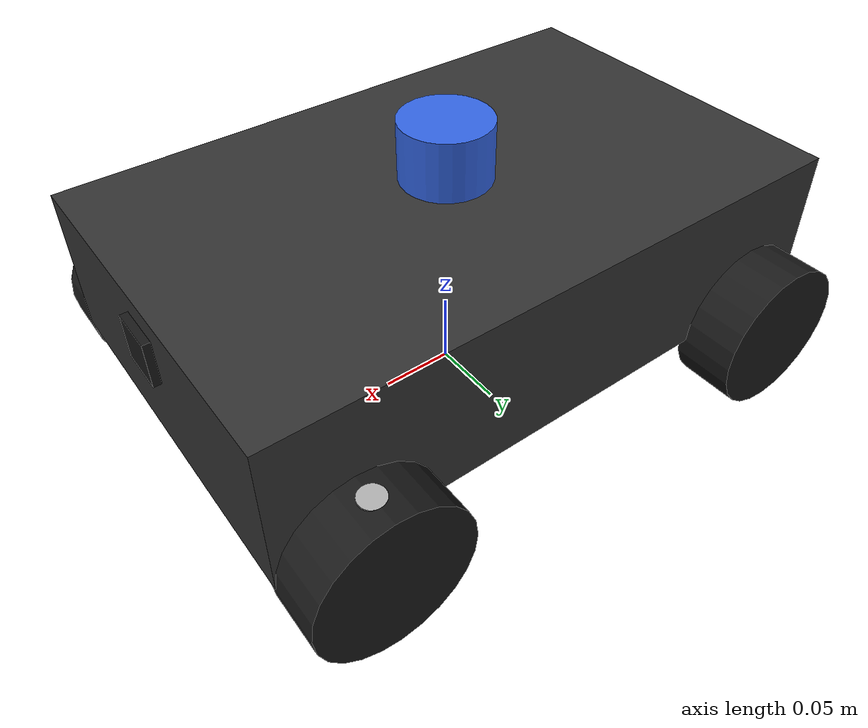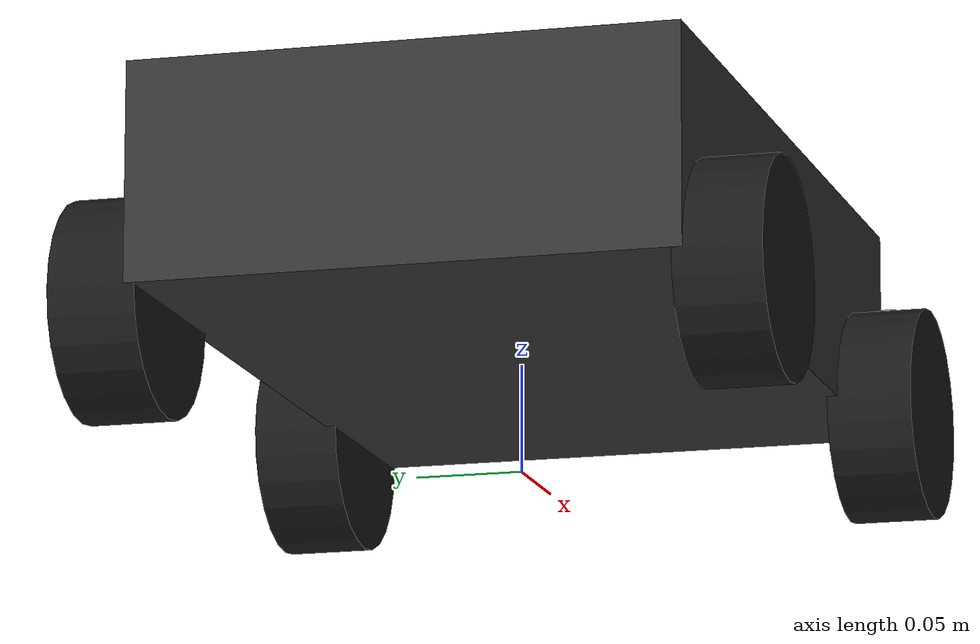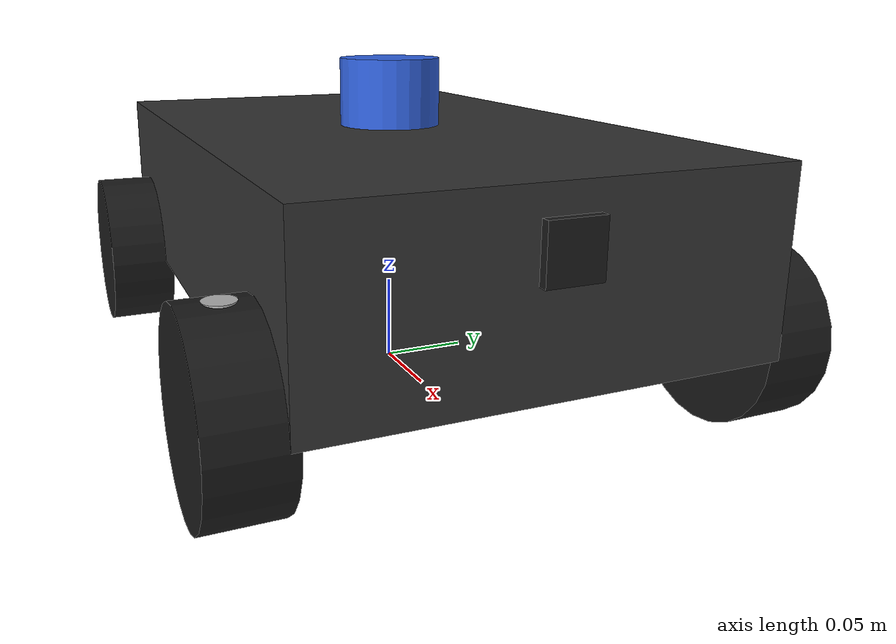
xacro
<?xml version="1.0"?>
<robot name="maze_bot" xmlns:xacro="http://www.ros.org/wiki/xacro">

  <!-- ========== 材质 ========== -->
  <!-- 仅影响 RViz/Gazebo 的可视颜色，不参与物理计算 -->
  <material name="dark_grey">
    <color rgba="0.2 0.2 0.2 1.0"/>
  </material>
  <material name="black">
    <color rgba="0.1 0.1 0.1 1.0"/>
  </material>
  <material name="light_grey">
    <color rgba="0.7 0.7 0.7 1.0"/>
  </material>
  <material name="blue">
    <color rgba="0.2 0.4 0.9 1.0"/>
  </material>

  <!-- ========== 尺寸 / 质量参数 ========== -->
  <!-- 集中在此处定义，改尺寸只需改这里；单位：米、千克 -->
  <xacro:property name="body_length" value="0.40"/>  <!-- 躯干长（X 方向） -->
  <xacro:property name="body_width"  value="0.25"/>  <!-- 躯干宽（Y 方向） -->
  <xacro:property name="body_height" value="0.10"/>  <!-- 躯干高（Z 方向） -->
  <xacro:property name="body_mass"   value="1.0"/>

  <xacro:property name="wheel_radius"   value="0.05"/>  <!-- 轮半径 -->
  <xacro:property name="wheel_width"    value="0.04"/>  <!-- 轮厚 -->
  <xacro:property name="wheel_mass"     value="0.05"/>
  <xacro:property name="wheel_x_offset" value="0.15"/>  <!-- 轮心相对车体中心的纵向偏移 -->
  <xacro:property name="wheel_y_offset" value="0.14"/>  <!-- 轮心相对车体中心的横向偏移 -->
  <!-- 车体中心离地高度 = 轮半径 + 半个车高，保证轮子恰好与地面相切 -->
  <xacro:property name="base_z"         value="${wheel_radius + body_height / 2}"/>

  <!-- ========== 惯量计算宏 ========== -->
  <!--
    惯性矩阵必须有，否则 Gazebo 无法做动力学解算（RViz 只显示时无所谓）。
    这里按均质几何体公式推导，避免手写数值出错。
  -->
  <!-- 长方体转动惯量：Ixx=m(y²+z²)/12，以此类推 -->
  <xacro:macro name="box_inertia" params="mass x y z">
    <inertial>
      <origin xyz="0 0 0" rpy="0 0 0"/>
      <mass value="${mass}"/>
      <inertia ixx="${mass * (y * y + z * z) / 12}" ixy="0" ixz="0"
               iyy="${mass * (x * x + z * z) / 12}" iyz="0"
               izz="${mass * (x * x + y * y) / 12}"/>
    </inertial>
  </xacro:macro>

  <!--
    圆柱转动惯量。公式给出的轴沿惯性系 z 轴，
    再配合 rpy 绕 X 旋转 90°，使圆柱轴对齐 link 自身的 y 轴
    —— 这样轮子的 visual/collision 与惯量方向一致，
    且绕 y 轴滚动时 `izz = m r²/2` 正是绕旋转轴的正确取值。
  -->
  <xacro:macro name="cylinder_inertia" params="mass radius length">
    <inertial>
      <origin xyz="0 0 0" rpy="1.5707963 0 0"/>
      <mass value="${mass}"/>
      <inertia ixx="${mass * (3 * radius * radius + length * length) / 12}" ixy="0" ixz="0"
               iyy="${mass * (3 * radius * radius + length * length) / 12}" iyz="0"
               izz="${mass * radius * radius / 2}"/>
    </inertial>
  </xacro:macro>

  <!-- ========== base_footprint（dummy 根 link） ========== -->
  <!--
    空的质量/惯量，只作为整棵 TF 树的根，代表机器人在地面的投影点。
    这样做一是让 URDF 的根节点无惯性（否则 Gazebo/解析器会告警），
    二是后续 continuous 关节的父连杆有了统一的固定参考。
  -->
  <link name="base_footprint"/>

  <!-- ========== base_link 躯干（长方体） ========== -->
  <link name="base_link">
    <xacro:box_inertia mass="${body_mass}" x="${body_length}" y="${body_width}" z="${body_height}"/>

    <!-- visual 决定外观，collision 决定碰撞体；这里两者用同一几何 -->
    <visual>
      <origin xyz="0 0 0" rpy="0 0 0"/>
      <geometry>
        <box size="${body_length} ${body_width} ${body_height}"/>
      </geometry>
      <material name="dark_grey"/>
    </visual>

    <collision>
      <origin xyz="0 0 0" rpy="0 0 0"/>
      <geometry>
        <box size="${body_length} ${body_width} ${body_height}"/>
      </geometry>
    </collision>
  </link>

  <!-- base_link 中心距地面 = 轮子半径 + 半个车身高度 -->
  <!-- 固定关节：把躯干抬到 base_z 高度，同时把 base_link 接到根节点上 -->
  <joint name="base_footprint_joint" type="fixed">
    <parent link="base_footprint"/>
    <child  link="base_link"/>
    <origin xyz="0 0 ${base_z}" rpy="0 0 0"/>
  </joint>

  <!-- ========== 通用轮子宏 ========== -->
  <!-- 轮子：cylinder radius=0.05m length=0.04m，轴沿 y 方向 -->
  <!-- visual/collision 都要绕 X 旋转 90°，把默认竖直的圆柱放倒成轮子 -->
  <xacro:macro name="wheel_link" params="name">
    <link name="${name}">
      <xacro:cylinder_inertia mass="${wheel_mass}" radius="${wheel_radius}" length="${wheel_width}"/>

      <visual>
        <origin xyz="0 0 0" rpy="1.5707963 0 0"/>
        <geometry>
          <cylinder radius="${wheel_radius}" length="${wheel_width}"/>
        </geometry>
        <material name="black"/>
      </visual>

      <collision>
        <origin xyz="0 0 0" rpy="1.5707963 0 0"/>
        <geometry>
          <cylinder radius="${wheel_radius}" length="${wheel_width}"/>
        </geometry>
      </collision>
    </link>
  </xacro:macro>

  <!--
    轮子转动关节：continuous（可无限圈转动），绕自身 y 轴。
    damping 给一点阻尼以抑制仿真中的抖动，friction=0 避免额外的静摩擦死区
    （前轮的转向摩擦由 JointPositionController 的 PID 处理）。
  -->
  <xacro:macro name="wheel_joint" params="name parent child x y z">
    <joint name="${name}" type="continuous">
      <parent link="${parent}"/>
      <child  link="${child}"/>
      <origin xyz="${x} ${y} ${z}" rpy="0 0 0"/>
      <axis xyz="0 1 0"/>
      <dynamics damping="0.01" friction="0.0"/>
    </joint>
  </xacro:macro>

  <!-- ========== 前轮转向柱 ========== -->
  <!-- 转向角限位 ±0.6 rad（约 ±34°），避免打死时轮子与车体互相穿插 -->
  <xacro:property name="steer_limit" value="0.6"/>

  <!--
    转向柱：视觉上是一根细圆柱（origin 抬高半个柱长，使其立于轮心之上），
    collision 省略 —— 柱体在车体内部，加碰撞只会增加计算量并可能自碰撞。
  -->
  <xacro:macro name="steering_link" params="name">
    <link name="${name}">
      <inertial>
        <origin xyz="0 0 0" rpy="0 0 0"/>
        <mass value="0.02"/>
        <inertia ixx="0.0000055" ixy="0" ixz="0"
                 iyy="0.0000055" iyz="0"
                 izz="0.0000012"/>
      </inertial>
      <visual>
        <origin xyz="0 0 0.025" rpy="0 0 0"/>
        <geometry>
          <cylinder radius="0.008" length="0.05"/>
        </geometry>
        <material name="light_grey"/>
      </visual>
    </link>
  </xacro:macro>

  <!-- 转向关节：revolute（有限角度），绕 Z 轴偏转；limit 里的 effort/velocity 是仿真必需项 -->
  <xacro:macro name="steering_joint" params="name parent child x y z">
    <joint name="${name}" type="revolute">
      <parent link="${parent}"/>
      <child  link="${child}"/>
      <origin xyz="${x} ${y} ${z}" rpy="0 0 0"/>
      <axis xyz="0 0 1"/>
      <limit lower="${-steer_limit}" upper="${steer_limit}" effort="5.0" velocity="5.0"/>
      <dynamics damping="0.05" friction="0.0"/>
    </joint>
  </xacro:macro>

  <!-- ========== 实例化轮子与转向柱 ========== -->
  <!-- 轮心高度 = base_link 中心(z=${base_z}) - 轮子半径，保证轮子恰好接触地面 -->
  <xacro:wheel_link name="front_left_wheel"/>
  <xacro:wheel_link name="front_right_wheel"/>
  <xacro:wheel_link name="rear_left_wheel"/>
  <xacro:wheel_link name="rear_right_wheel"/>

  <xacro:steering_link name="front_left_steering_link"/>
  <xacro:steering_link name="front_right_steering_link"/>

  <!-- 前轮：转向柱挂在 base_link 前部，其 z 取 -wheel_radius，使转向轴正好穿过轮心 -->
  <xacro:steering_joint name="front_left_steering_joint"  parent="base_link" child="front_left_steering_link"
                        x="${wheel_x_offset}"  y="${wheel_y_offset}"  z="${-wheel_radius}"/>
  <xacro:steering_joint name="front_right_steering_joint" parent="base_link" child="front_right_steering_link"
                        x="${wheel_x_offset}"  y="${-wheel_y_offset}" z="${-wheel_radius}"/>

  <!-- 前轮挂在转向柱上（相对坐标为 0），因此转向柱转动时轮子一起偏转；
       后轮直接挂在 base_link 上，由 DiffDrive 插件驱动 -->
  <xacro:wheel_joint name="front_left_wheel_joint"  parent="front_left_steering_link"  child="front_left_wheel"  x="0" y="0" z="0"/>
  <xacro:wheel_joint name="front_right_wheel_joint" parent="front_right_steering_link" child="front_right_wheel" x="0" y="0" z="0"/>
  <xacro:wheel_joint name="rear_left_wheel_joint"   parent="base_link" child="rear_left_wheel"   x="${-wheel_x_offset}" y="${wheel_y_offset}"  z="${-wheel_radius}"/>
  <xacro:wheel_joint name="rear_right_wheel_joint"  parent="base_link" child="rear_right_wheel"  x="${-wheel_x_offset}" y="${-wheel_y_offset}" z="${-wheel_radius}"/>

  <!-- ========== 车头相机 ========== -->
  <!-- 相机连杆本体（小方块），实际成像由下面的 Gazebo 传感器负责 -->
  <link name="camera_link">
    <inertial>
      <origin xyz="0 0 0" rpy="0 0 0"/>
      <mass value="0.01"/>
      <inertia ixx="0.0000015" ixy="0" ixz="0"
               iyy="0.0000015" iyz="0"
               izz="0.0000015"/>
    </inertial>
    <visual>
      <origin xyz="0 0 0" rpy="0 0 0"/>
      <geometry>
        <box size="0.03 0.03 0.03"/>
      </geometry>
      <material name="black"/>
    </visual>
  </link>

  <!-- 相机固定在车体前端（X 正方向为车头）略高于车身中心处 -->
  <joint name="camera_joint" type="fixed">
    <parent link="base_link"/>
    <child  link="camera_link"/>
    <origin xyz="0.19 0 0.02" rpy="0 0 0"/>
  </joint>

  <!-- 相机传感器：RGB 与深度各一个，挂在同一个 camera_link 上 -->
  <gazebo reference="camera_link">
    <!--
      RGB 相机：15 Hz，640x480，水平视场 1.047 rad(60°)。
      near/far 裁剪面决定可见范围（0.05~20 m）。
      visualize=true 会在 Gazebo 界面里额外开一个小窗口预览画面。
    -->
    <sensor name="front_camera" type="camera">
      <pose>0 0 0 0 0 0</pose>
      <topic>/camera/image_raw</topic>
      <update_rate>15</update_rate>
      <camera name="front_camera">
        <horizontal_fov>1.047</horizontal_fov>
        <image>
          <width>640</width>
          <height>480</height>
          <format>R8G8B8</format>
        </image>
        <clip>
          <near>0.05</near>
          <far>20</far>
        </clip>
      </camera>
      <always_on>1</always_on>
      <visualize>true</visualize>
    </sensor>
    <!--
      深度相机：10 Hz，输出 R_FLOAT32 单通道浮点（单位：米），
      视场与 RGB 保持一致以便 rtabmap 做 RGB-D 配准；
      far 取 10 m（深度精度随距离下降，无需与 RGB 一样远）。
      visualize=false：不弹预览窗口，避免多开一个渲染面板占用资源。
    -->
    <sensor name="depth_camera" type="depth_camera">
      <pose>0 0 0 0 0 0</pose>
      <topic>/camera/depth_image</topic>
      <update_rate>10</update_rate>
      <camera name="depth_camera">
        <horizontal_fov>1.047</horizontal_fov>
        <image>
          <width>640</width>
          <height>480</height>
          <format>R_FLOAT32</format>
        </image>
        <clip>
          <near>0.05</near>
          <far>10</far>
        </clip>
      </camera>
      <always_on>1</always_on>
      <visualize>false</visualize>
    </sensor>
  </gazebo>

  <!-- ========== 顶部激光雷达 ========== -->
  <!-- 雷达连杆：蓝色短圆柱，装在车体顶部中心 -->
  <link name="lidar_link">
    <inertial>
      <origin xyz="0 0 0" rpy="0 0 0"/>
      <mass value="0.05"/>
      <inertia ixx="0.0000179" ixy="0" ixz="0"
               iyy="0.0000179" iyz="0"
               izz="0.0000225"/>
    </inertial>
    <visual>
      <origin xyz="0 0 0" rpy="0 0 0"/>
      <geometry>
        <cylinder radius="0.03" length="0.04"/>
      </geometry>
      <material name="blue"/>
    </visual>
    <collision>
      <origin xyz="0 0 0" rpy="0 0 0"/>
      <geometry>
        <cylinder radius="0.03" length="0.04"/>
      </geometry>
    </collision>
  </link>

  <!-- z=0.07：抬到车体（半高 0.05）之上，避免扫描被自身车体遮挡 -->
  <joint name="lidar_joint" type="fixed">
    <parent link="base_link"/>
    <child  link="lidar_link"/>
    <origin xyz="0 0 0.07" rpy="0 0 0"/>
  </joint>

  <gazebo reference="lidar_link">
    <sensor name="lidar" type="gpu_lidar">
      <pose>0 0 0 0 0 0</pose>
      <topic>/lidar/scan_raw</topic>
      <update_rate>10</update_rate>
      <lidar>
        <scan>
          <horizontal>
            <samples>360</samples>
            <resolution>1</resolution>
            <min_angle>-3.14159</min_angle>
            <max_angle>3.14159</max_angle>
          </horizontal>
        </scan>
        <range>
          <min>0.12</min>
          <max>10.0</max>
          <resolution>0.01</resolution>
        </range>
      </lidar>
      <always_on>1</always_on>
      <visualize>true</visualize>
    </sensor>
  </gazebo>

  <!-- ========== Gazebo 仿真配置 ========== -->
  <!-- 插件决定机器人在仿真里"怎么动"，URDF 本身只描述外形与结构 -->
  <gazebo>
    <!-- 关节状态发布：把各关节角发布到 gz 的 joint_state 话题，
         经 ros_gz_bridge 映射为 ROS 2 的 /joint_states -->
    <plugin filename="gz-sim-joint-state-publisher-system"
            name="gz::sim::systems::JointStatePublisher"/>
    <!--
      前轮转向控制器：一个插件只能控制一个关节，所以左右各配一个。
      sub_topic=steering_cmd 接收目标转角（经桥接后对应 ROS 2 的
      /steering_position），用 PID 把转向柱拉到目标角度。
    -->
    <plugin filename="gz-sim-joint-position-controller-system"
            name="gz::sim::systems::JointPositionController">
      <joint_name>front_left_steering_joint</joint_name>
      <sub_topic>steering_cmd</sub_topic>
      <p_gain>10.0</p_gain>
      <i_gain>1.0</i_gain>
      <i_max>1.0</i_max>
      <d_gain>0.1</d_gain>
      <cmd_max>5.0</cmd_max>
      <cmd_min>-5.0</cmd_min>
    </plugin>
    <plugin filename="gz-sim-joint-position-controller-system"
            name="gz::sim::systems::JointPositionController">
      <joint_name>front_right_steering_joint</joint_name>
      <sub_topic>steering_cmd</sub_topic>
      <p_gain>10.0</p_gain>
      <i_gain>1.0</i_gain>
      <i_max>1.0</i_max>
      <d_gain>0.1</d_gain>
      <cmd_max>5.0</cmd_max>
      <cmd_min>-5.0</cmd_min>
    </plugin>
    <plugin filename="gz-sim-diff-drive-system" name="gz::sim::systems::DiffDrive">
      <left_joint>rear_left_wheel_joint</left_joint>
      <right_joint>rear_right_wheel_joint</right_joint>
      <wheel_separation>${2 * wheel_y_offset}</wheel_separation>
      <wheel_radius>${wheel_radius}</wheel_radius>
      <odom_topic>/odom</odom_topic>
      <tf_topic>/tf</tf_topic>
      <child_frame_id>base_footprint</child_frame_id>
      <odom_publish_frequency>50</odom_publish_frequency>
      <max_linear_acceleration>5.0</max_linear_acceleration>
      <max_angular_acceleration>10.0</max_angular_acceleration>
      <max_linear_velocity>0.5</max_linear_velocity>
      <max_angular_velocity>1.5</max_angular_velocity>
    </plugin>
  </gazebo>

</robot>
